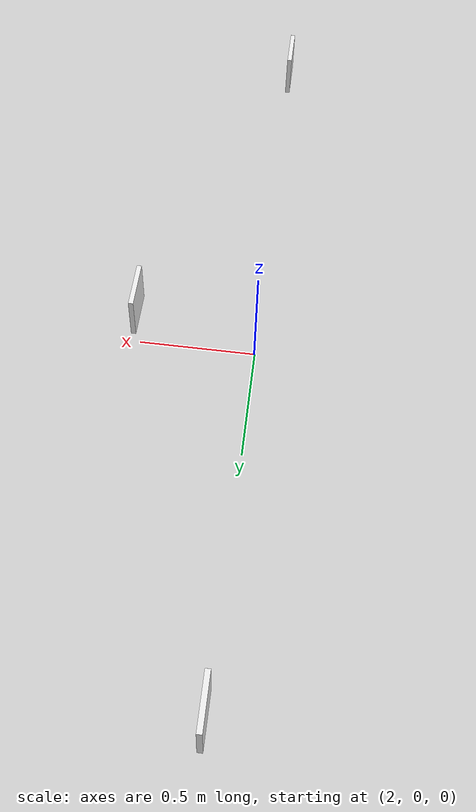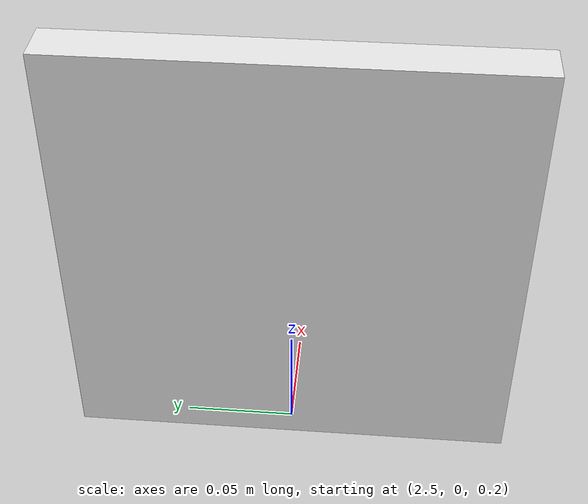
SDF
<?xml version="1.0"?>
<sdf version="1.6">
  <world name="markers">
    <include><uri>model://sun</uri></include>
    <include><uri>model://ground_plane</uri></include>
    <!-- These white boxes are placeholders. See README to apply ArUco PNG
         textures generated by `ros2 run aruco_navigation generate_markers`. -->
    <model name="marker_box_0"><static>true</static><pose>2.5 0.0 0.3 0 0 3.14159</pose>
      <link name="l">
        <visual name="v">
          <geometry><box><size>0.02 0.2 0.2</size></box></geometry>
          <material><script><uri>file://media/materials/scripts/gazebo.material</uri><name>Gazebo/White</name></script></material>
        </visual>
        <collision name="c"><geometry><box><size>0.02 0.2 0.2</size></box></geometry></collision>
      </link></model>
    <model name="marker_box_1"><static>true</static><pose>2.0 1.6 0.3 0 0 3.14159</pose>
      <link name="l">
        <visual name="v">
          <geometry><box><size>0.02 0.2 0.2</size></box></geometry>
          <material><script><uri>file://media/materials/scripts/gazebo.material</uri><name>Gazebo/White</name></script></material>
        </visual>
        <collision name="c"><geometry><box><size>0.02 0.2 0.2</size></box></geometry></collision>
      </link></model>
    <model name="marker_box_2"><static>true</static><pose>2.0 -1.6 0.3 0 0 3.14159</pose>
      <link name="l">
        <visual name="v">
          <geometry><box><size>0.02 0.2 0.2</size></box></geometry>
          <material><script><uri>file://media/materials/scripts/gazebo.material</uri><name>Gazebo/White</name></script></material>
        </visual>
        <collision name="c"><geometry><box><size>0.02 0.2 0.2</size></box></geometry></collision>
      </link></model>
  </world>
</sdf>
